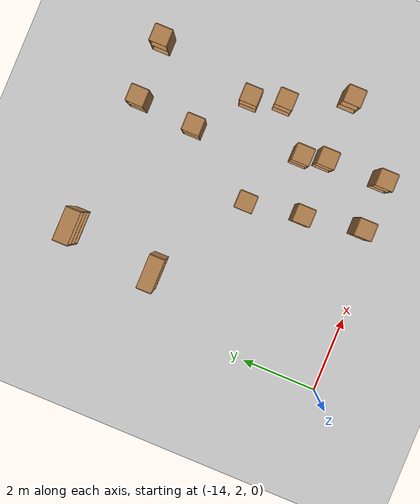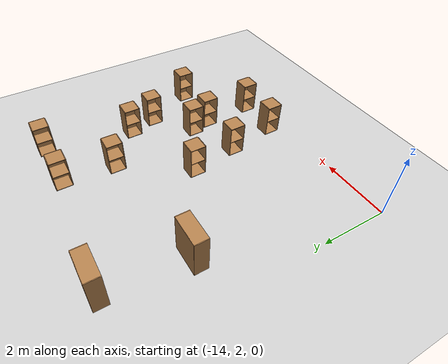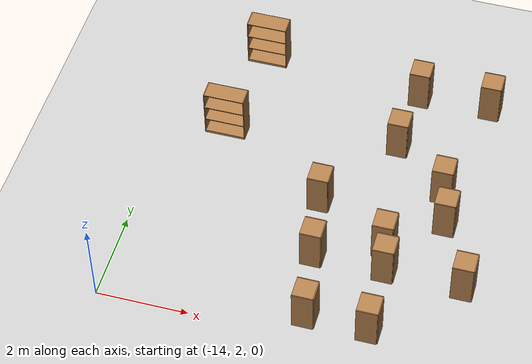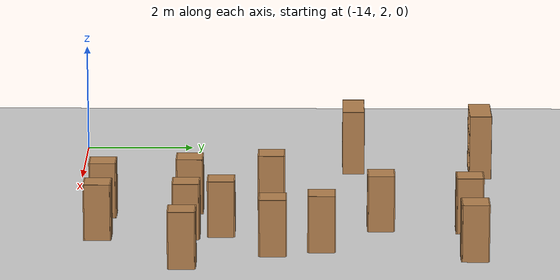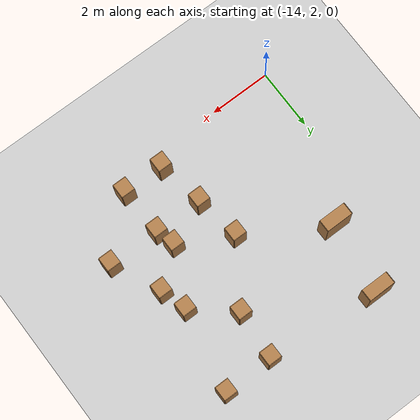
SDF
<sdf version="1.6">
 <world name="default">
  <model name="ground_plane">
   <static>1</static>
   <link name="link">
    <collision name="collision">
     <geometry><plane><normal>0 0 1</normal><size>100 100</size></plane></geometry>
     <surface><friction><ode><mu>100</mu><mu2>50</mu2></ode></friction></surface>
    </collision>
    <visual name="visual">
     <cast_shadows>0</cast_shadows>
     <geometry><plane><normal>0 0 1</normal><size>100 100</size></plane></geometry>
     <material>
      <script><uri>file://media/materials/scripts/gazebo.material</uri><name>Gazebo/Grey</name></script>
     </material>
    </visual>
   </link>
  </model>
  <model name="cabinet_34">
   <static>1</static>
   <link name="cabinet_bottom_plate">
    <inertial>
     <pose>0 0 -1 0 -0 0</pose>
     <inertia><ixx>2.05</ixx><ixy>0</ixy><ixz>0</ixz><iyy>2.05</iyy><iyz>0</iyz><izz>2.05</izz></inertia>
     <mass>25</mass>
    </inertial>
    <collision name="cabinet_bottom_plate_geom">
     <pose>0 0 0.01 0 -0 0</pose>
     <geometry><box><size>0.45 0.45 0.02</size></box></geometry>
    </collision>
    <visual name="cabinet_bottom_plate_geom_visual">
     <pose>0 0 0.01 0 -0 0</pose>
     <geometry><box><size>0.45 0.45 0.02</size></box></geometry>
     <material>
      <script><uri>file://media/materials/scripts/gazebo.material</uri><name>Gazebo/Wood</name></script>
     </material>
    </visual>
    <collision name="cabinet_bottom_plate_geom_cabinet_back_plate">
     <pose>0.235 0 0.51 0 -0 0</pose>
     <geometry><box><size>0.02 0.45 1.02</size></box></geometry>
    </collision>
    <visual name="cabinet_bottom_plate_geom_cabinet_back_plate_visual">
     <pose>0.235 0 0.51 0 -0 0</pose>
     <geometry><box><size>0.02 0.45 1.02</size></box></geometry>
     <material>
      <script><uri>file://media/materials/scripts/gazebo.material</uri><name>Gazebo/Wood</name></script>
     </material>
    </visual>
    <collision name="cabinet_bottom_plate_geom_cabinet_left_plate">
     <pose>0 0.235 0.51 0 -0 0</pose>
     <geometry><box><size>0.45 0.02 1.02</size></box></geometry>
    </collision>
    <visual name="cabinet_bottom_plate_geom_cabinet_left_plate_visual">
     <pose>0 0.235 0.51 0 -0 0</pose>
     <geometry><box><size>0.45 0.02 1.02</size></box></geometry>
     <material>
      <script><uri>file://media/materials/scripts/gazebo.material</uri><name>Gazebo/Wood</name></script>
     </material>
    </visual>
    <collision name="cabinet_bottom_plate_geom_cabinet_middle_plate">
     <pose>0 0 0.51 0 -0 0</pose>
     <geometry><box><size>0.45 0.45 0.02</size></box></geometry>
    </collision>
    <visual name="cabinet_bottom_plate_geom_cabinet_middle_plate_visual">
     <pose>0 0 0.51 0 -0 0</pose>
     <geometry><box><size>0.45 0.45 0.02</size></box></geometry>
     <material>
      <script><uri>file://media/materials/scripts/gazebo.material</uri><name>Gazebo/Wood</name></script>
     </material>
    </visual>
    <collision name="cabinet_bottom_plate_geom_cabinet_right_plate">
     <pose>0 -0.235 0.51 0 -0 0</pose>
     <geometry><box><size>0.45 0.02 1.02</size></box></geometry>
    </collision>
    <visual name="cabinet_bottom_plate_geom_cabinet_right_plate_visual">
     <pose>0 -0.235 0.51 0 -0 0</pose>
     <geometry><box><size>0.45 0.02 1.02</size></box></geometry>
     <material>
      <script><uri>file://media/materials/scripts/gazebo.material</uri><name>Gazebo/Wood</name></script>
     </material>
    </visual>
    <collision name="cabinet_bottom_plate_geom_cabinet_top_plate">
     <pose>0 0 1.01 0 -0 0</pose>
     <geometry><box><size>0.45 0.45 0.02</size></box></geometry>
    </collision>
    <visual name="cabinet_bottom_plate_geom_cabinet_top_plate_visual">
     <pose>0 0 1.01 0 -0 0</pose>
     <geometry><box><size>0.45 0.45 0.02</size></box></geometry>
     <material>
      <script><uri>file://media/materials/scripts/gazebo.material</uri><name>Gazebo/Wood</name></script>
     </material>
    </visual>
   </link>
   <pose>-8.7335 9.07975 0 0 -0 0</pose>
  </model>
  <model name="cabinet_35">
   <static>1</static>
   <link name="cabinet_bottom_plate">
    <inertial>
     <pose>0 0 -1 0 -0 0</pose>
     <inertia><ixx>2.05</ixx><ixy>0</ixy><ixz>0</ixz><iyy>2.05</iyy><iyz>0</iyz><izz>2.05</izz></inertia>
     <mass>25</mass>
    </inertial>
    <collision name="cabinet_bottom_plate_geom">
     <pose>0 0 0.01 0 -0 0</pose>
     <geometry><box><size>0.45 0.45 0.02</size></box></geometry>
    </collision>
    <visual name="cabinet_bottom_plate_geom_visual">
     <pose>0 0 0.01 0 -0 0</pose>
     <geometry><box><size>0.45 0.45 0.02</size></box></geometry>
     <material>
      <script><uri>file://media/materials/scripts/gazebo.material</uri><name>Gazebo/Wood</name></script>
     </material>
    </visual>
    <collision name="cabinet_bottom_plate_geom_cabinet_back_plate">
     <pose>0.235 0 0.51 0 -0 0</pose>
     <geometry><box><size>0.02 0.45 1.02</size></box></geometry>
    </collision>
    <visual name="cabinet_bottom_plate_geom_cabinet_back_plate_visual">
     <pose>0.235 0 0.51 0 -0 0</pose>
     <geometry><box><size>0.02 0.45 1.02</size></box></geometry>
     <material>
      <script><uri>file://media/materials/scripts/gazebo.material</uri><name>Gazebo/Wood</name></script>
     </material>
    </visual>
    <collision name="cabinet_bottom_plate_geom_cabinet_left_plate">
     <pose>0 0.235 0.51 0 -0 0</pose>
     <geometry><box><size>0.45 0.02 1.02</size></box></geometry>
    </collision>
    <visual name="cabinet_bottom_plate_geom_cabinet_left_plate_visual">
     <pose>0 0.235 0.51 0 -0 0</pose>
     <geometry><box><size>0.45 0.02 1.02</size></box></geometry>
     <material>
      <script><uri>file://media/materials/scripts/gazebo.material</uri><name>Gazebo/Wood</name></script>
     </material>
    </visual>
    <collision name="cabinet_bottom_plate_geom_cabinet_middle_plate">
     <pose>0 0 0.51 0 -0 0</pose>
     <geometry><box><size>0.45 0.45 0.02</size></box></geometry>
    </collision>
    <visual name="cabinet_bottom_plate_geom_cabinet_middle_plate_visual">
     <pose>0 0 0.51 0 -0 0</pose>
     <geometry><box><size>0.45 0.45 0.02</size></box></geometry>
     <material>
      <script><uri>file://media/materials/scripts/gazebo.material</uri><name>Gazebo/Wood</name></script>
     </material>
    </visual>
    <collision name="cabinet_bottom_plate_geom_cabinet_right_plate">
     <pose>0 -0.235 0.51 0 -0 0</pose>
     <geometry><box><size>0.45 0.02 1.02</size></box></geometry>
    </collision>
    <visual name="cabinet_bottom_plate_geom_cabinet_right_plate_visual">
     <pose>0 -0.235 0.51 0 -0 0</pose>
     <geometry><box><size>0.45 0.02 1.02</size></box></geometry>
     <material>
      <script><uri>file://media/materials/scripts/gazebo.material</uri><name>Gazebo/Wood</name></script>
     </material>
    </visual>
    <collision name="cabinet_bottom_plate_geom_cabinet_top_plate">
     <pose>0 0 1.01 0 -0 0</pose>
     <geometry><box><size>0.45 0.45 0.02</size></box></geometry>
    </collision>
    <visual name="cabinet_bottom_plate_geom_cabinet_top_plate_visual">
     <pose>0 0 1.01 0 -0 0</pose>
     <geometry><box><size>0.45 0.45 0.02</size></box></geometry>
     <material>
      <script><uri>file://media/materials/scripts/gazebo.material</uri><name>Gazebo/Wood</name></script>
     </material>
    </visual>
   </link>
   <pose>-7.12021 9.10762 0 0 -0 0</pose>
  </model>
  <model name="cabinet_45">
   <static>1</static>
   <link name="cabinet_bottom_plate">
    <inertial>
     <pose>0 0 -1 0 -0 0</pose>
     <inertia><ixx>2.05</ixx><ixy>0</ixy><ixz>0</ixz><iyy>2.05</iyy><iyz>0</iyz><izz>2.05</izz></inertia>
     <mass>25</mass>
    </inertial>
    <collision name="cabinet_bottom_plate_geom">
     <pose>0 0 0.01 0 -0 0</pose>
     <geometry><box><size>0.45 0.45 0.02</size></box></geometry>
    </collision>
    <visual name="cabinet_bottom_plate_geom_visual">
     <pose>0 0 0.01 0 -0 0</pose>
     <geometry><box><size>0.45 0.45 0.02</size></box></geometry>
     <material>
      <script><uri>file://media/materials/scripts/gazebo.material</uri><name>Gazebo/Wood</name></script>
     </material>
    </visual>
    <collision name="cabinet_bottom_plate_geom_cabinet_back_plate">
     <pose>0.235 0 0.51 0 -0 0</pose>
     <geometry><box><size>0.02 0.45 1.02</size></box></geometry>
    </collision>
    <visual name="cabinet_bottom_plate_geom_cabinet_back_plate_visual">
     <pose>0.235 0 0.51 0 -0 0</pose>
     <geometry><box><size>0.02 0.45 1.02</size></box></geometry>
     <material>
      <script><uri>file://media/materials/scripts/gazebo.material</uri><name>Gazebo/Wood</name></script>
     </material>
    </visual>
    <collision name="cabinet_bottom_plate_geom_cabinet_left_plate">
     <pose>0 0.235 0.51 0 -0 0</pose>
     <geometry><box><size>0.45 0.02 1.02</size></box></geometry>
    </collision>
    <visual name="cabinet_bottom_plate_geom_cabinet_left_plate_visual">
     <pose>0 0.235 0.51 0 -0 0</pose>
     <geometry><box><size>0.45 0.02 1.02</size></box></geometry>
     <material>
      <script><uri>file://media/materials/scripts/gazebo.material</uri><name>Gazebo/Wood</name></script>
     </material>
    </visual>
    <collision name="cabinet_bottom_plate_geom_cabinet_middle_plate">
     <pose>0 0 0.51 0 -0 0</pose>
     <geometry><box><size>0.45 0.45 0.02</size></box></geometry>
    </collision>
    <visual name="cabinet_bottom_plate_geom_cabinet_middle_plate_visual">
     <pose>0 0 0.51 0 -0 0</pose>
     <geometry><box><size>0.45 0.45 0.02</size></box></geometry>
     <material>
      <script><uri>file://media/materials/scripts/gazebo.material</uri><name>Gazebo/Wood</name></script>
     </material>
    </visual>
    <collision name="cabinet_bottom_plate_geom_cabinet_right_plate">
     <pose>0 -0.235 0.51 0 -0 0</pose>
     <geometry><box><size>0.45 0.02 1.02</size></box></geometry>
    </collision>
    <visual name="cabinet_bottom_plate_geom_cabinet_right_plate_visual">
     <pose>0 -0.235 0.51 0 -0 0</pose>
     <geometry><box><size>0.45 0.02 1.02</size></box></geometry>
     <material>
      <script><uri>file://media/materials/scripts/gazebo.material</uri><name>Gazebo/Wood</name></script>
     </material>
    </visual>
    <collision name="cabinet_bottom_plate_geom_cabinet_top_plate">
     <pose>0 0 1.01 0 -0 0</pose>
     <geometry><box><size>0.45 0.45 0.02</size></box></geometry>
    </collision>
    <visual name="cabinet_bottom_plate_geom_cabinet_top_plate_visual">
     <pose>0 0 1.01 0 -0 0</pose>
     <geometry><box><size>0.45 0.45 0.02</size></box></geometry>
     <material>
      <script><uri>file://media/materials/scripts/gazebo.material</uri><name>Gazebo/Wood</name></script>
     </material>
    </visual>
   </link>
   <pose>-8.8622 7.51277 0 0 -0 0</pose>
  </model>
  <model name="cabinet_46">
   <static>1</static>
   <link name="cabinet_bottom_plate">
    <inertial>
     <pose>0 0 -1 0 -0 0</pose>
     <inertia><ixx>2.05</ixx><ixy>0</ixy><ixz>0</ixz><iyy>2.05</iyy><iyz>0</iyz><izz>2.05</izz></inertia>
     <mass>25</mass>
    </inertial>
    <collision name="cabinet_bottom_plate_geom">
     <pose>0 0 0.01 0 -0 0</pose>
     <geometry><box><size>0.45 0.45 0.02</size></box></geometry>
    </collision>
    <visual name="cabinet_bottom_plate_geom_visual">
     <pose>0 0 0.01 0 -0 0</pose>
     <geometry><box><size>0.45 0.45 0.02</size></box></geometry>
     <material>
      <script><uri>file://media/materials/scripts/gazebo.material</uri><name>Gazebo/Wood</name></script>
     </material>
    </visual>
    <collision name="cabinet_bottom_plate_geom_cabinet_back_plate">
     <pose>0.235 0 0.51 0 -0 0</pose>
     <geometry><box><size>0.02 0.45 1.02</size></box></geometry>
    </collision>
    <visual name="cabinet_bottom_plate_geom_cabinet_back_plate_visual">
     <pose>0.235 0 0.51 0 -0 0</pose>
     <geometry><box><size>0.02 0.45 1.02</size></box></geometry>
     <material>
      <script><uri>file://media/materials/scripts/gazebo.material</uri><name>Gazebo/Wood</name></script>
     </material>
    </visual>
    <collision name="cabinet_bottom_plate_geom_cabinet_left_plate">
     <pose>0 0.235 0.51 0 -0 0</pose>
     <geometry><box><size>0.45 0.02 1.02</size></box></geometry>
    </collision>
    <visual name="cabinet_bottom_plate_geom_cabinet_left_plate_visual">
     <pose>0 0.235 0.51 0 -0 0</pose>
     <geometry><box><size>0.45 0.02 1.02</size></box></geometry>
     <material>
      <script><uri>file://media/materials/scripts/gazebo.material</uri><name>Gazebo/Wood</name></script>
     </material>
    </visual>
    <collision name="cabinet_bottom_plate_geom_cabinet_middle_plate">
     <pose>0 0 0.51 0 -0 0</pose>
     <geometry><box><size>0.45 0.45 0.02</size></box></geometry>
    </collision>
    <visual name="cabinet_bottom_plate_geom_cabinet_middle_plate_visual">
     <pose>0 0 0.51 0 -0 0</pose>
     <geometry><box><size>0.45 0.45 0.02</size></box></geometry>
     <material>
      <script><uri>file://media/materials/scripts/gazebo.material</uri><name>Gazebo/Wood</name></script>
     </material>
    </visual>
    <collision name="cabinet_bottom_plate_geom_cabinet_right_plate">
     <pose>0 -0.235 0.51 0 -0 0</pose>
     <geometry><box><size>0.45 0.02 1.02</size></box></geometry>
    </collision>
    <visual name="cabinet_bottom_plate_geom_cabinet_right_plate_visual">
     <pose>0 -0.235 0.51 0 -0 0</pose>
     <geometry><box><size>0.45 0.02 1.02</size></box></geometry>
     <material>
      <script><uri>file://media/materials/scripts/gazebo.material</uri><name>Gazebo/Wood</name></script>
     </material>
    </visual>
    <collision name="cabinet_bottom_plate_geom_cabinet_top_plate">
     <pose>0 0 1.01 0 -0 0</pose>
     <geometry><box><size>0.45 0.45 0.02</size></box></geometry>
    </collision>
    <visual name="cabinet_bottom_plate_geom_cabinet_top_plate_visual">
     <pose>0 0 1.01 0 -0 0</pose>
     <geometry><box><size>0.45 0.45 0.02</size></box></geometry>
     <material>
      <script><uri>file://media/materials/scripts/gazebo.material</uri><name>Gazebo/Wood</name></script>
     </material>
    </visual>
   </link>
   <pose>-7.63486 6.45634 0 0 -0 0</pose>
  </model>
  <model name="cabinet_57">
   <static>1</static>
   <link name="cabinet_bottom_plate">
    <inertial>
     <pose>0 0 -1 0 -0 0</pose>
     <inertia><ixx>2.05</ixx><ixy>0</ixy><ixz>0</ixz><iyy>2.05</iyy><iyz>0</iyz><izz>2.05</izz></inertia>
     <mass>25</mass>
    </inertial>
    <collision name="cabinet_bottom_plate_geom">
     <pose>0 0 0.01 0 -0 0</pose>
     <geometry><box><size>0.45 0.45 0.02</size></box></geometry>
    </collision>
    <visual name="cabinet_bottom_plate_geom_visual">
     <pose>0 0 0.01 0 -0 0</pose>
     <geometry><box><size>0.45 0.45 0.02</size></box></geometry>
     <material>
      <script><uri>file://media/materials/scripts/gazebo.material</uri><name>Gazebo/Wood</name></script>
     </material>
    </visual>
    <collision name="cabinet_bottom_plate_geom_cabinet_back_plate">
     <pose>0.235 0 0.51 0 -0 0</pose>
     <geometry><box><size>0.02 0.45 1.02</size></box></geometry>
    </collision>
    <visual name="cabinet_bottom_plate_geom_cabinet_back_plate_visual">
     <pose>0.235 0 0.51 0 -0 0</pose>
     <geometry><box><size>0.02 0.45 1.02</size></box></geometry>
     <material>
      <script><uri>file://media/materials/scripts/gazebo.material</uri><name>Gazebo/Wood</name></script>
     </material>
    </visual>
    <collision name="cabinet_bottom_plate_geom_cabinet_left_plate">
     <pose>0 0.235 0.51 0 -0 0</pose>
     <geometry><box><size>0.45 0.02 1.02</size></box></geometry>
    </collision>
    <visual name="cabinet_bottom_plate_geom_cabinet_left_plate_visual">
     <pose>0 0.235 0.51 0 -0 0</pose>
     <geometry><box><size>0.45 0.02 1.02</size></box></geometry>
     <material>
      <script><uri>file://media/materials/scripts/gazebo.material</uri><name>Gazebo/Wood</name></script>
     </material>
    </visual>
    <collision name="cabinet_bottom_plate_geom_cabinet_middle_plate">
     <pose>0 0 0.51 0 -0 0</pose>
     <geometry><box><size>0.45 0.45 0.02</size></box></geometry>
    </collision>
    <visual name="cabinet_bottom_plate_geom_cabinet_middle_plate_visual">
     <pose>0 0 0.51 0 -0 0</pose>
     <geometry><box><size>0.45 0.45 0.02</size></box></geometry>
     <material>
      <script><uri>file://media/materials/scripts/gazebo.material</uri><name>Gazebo/Wood</name></script>
     </material>
    </visual>
    <collision name="cabinet_bottom_plate_geom_cabinet_right_plate">
     <pose>0 -0.235 0.51 0 -0 0</pose>
     <geometry><box><size>0.45 0.02 1.02</size></box></geometry>
    </collision>
    <visual name="cabinet_bottom_plate_geom_cabinet_right_plate_visual">
     <pose>0 -0.235 0.51 0 -0 0</pose>
     <geometry><box><size>0.45 0.02 1.02</size></box></geometry>
     <material>
      <script><uri>file://media/materials/scripts/gazebo.material</uri><name>Gazebo/Wood</name></script>
     </material>
    </visual>
    <collision name="cabinet_bottom_plate_geom_cabinet_top_plate">
     <pose>0 0 1.01 0 -0 0</pose>
     <geometry><box><size>0.45 0.45 0.02</size></box></geometry>
    </collision>
    <visual name="cabinet_bottom_plate_geom_cabinet_top_plate_visual">
     <pose>0 0 1.01 0 -0 0</pose>
     <geometry><box><size>0.45 0.45 0.02</size></box></geometry>
     <material>
      <script><uri>file://media/materials/scripts/gazebo.material</uri><name>Gazebo/Wood</name></script>
     </material>
    </visual>
   </link>
   <pose>-10.1422 5.55587 0 0 -0 0</pose>
  </model>
  <model name="cabinet_58">
   <static>1</static>
   <link name="cabinet_bottom_plate">
    <inertial>
     <pose>0 0 -1 0 -0 0</pose>
     <inertia><ixx>2.05</ixx><ixy>0</ixy><ixz>0</ixz><iyy>2.05</iyy><iyz>0</iyz><izz>2.05</izz></inertia>
     <mass>25</mass>
    </inertial>
    <collision name="cabinet_bottom_plate_geom">
     <pose>0 0 0.01 0 -0 0</pose>
     <geometry><box><size>0.45 0.45 0.02</size></box></geometry>
    </collision>
    <visual name="cabinet_bottom_plate_geom_visual">
     <pose>0 0 0.01 0 -0 0</pose>
     <geometry><box><size>0.45 0.45 0.02</size></box></geometry>
     <material>
      <script><uri>file://media/materials/scripts/gazebo.material</uri><name>Gazebo/Wood</name></script>
     </material>
    </visual>
    <collision name="cabinet_bottom_plate_geom_cabinet_back_plate">
     <pose>0.235 0 0.51 0 -0 0</pose>
     <geometry><box><size>0.02 0.45 1.02</size></box></geometry>
    </collision>
    <visual name="cabinet_bottom_plate_geom_cabinet_back_plate_visual">
     <pose>0.235 0 0.51 0 -0 0</pose>
     <geometry><box><size>0.02 0.45 1.02</size></box></geometry>
     <material>
      <script><uri>file://media/materials/scripts/gazebo.material</uri><name>Gazebo/Wood</name></script>
     </material>
    </visual>
    <collision name="cabinet_bottom_plate_geom_cabinet_left_plate">
     <pose>0 0.235 0.51 0 -0 0</pose>
     <geometry><box><size>0.45 0.02 1.02</size></box></geometry>
    </collision>
    <visual name="cabinet_bottom_plate_geom_cabinet_left_plate_visual">
     <pose>0 0.235 0.51 0 -0 0</pose>
     <geometry><box><size>0.45 0.02 1.02</size></box></geometry>
     <material>
      <script><uri>file://media/materials/scripts/gazebo.material</uri><name>Gazebo/Wood</name></script>
     </material>
    </visual>
    <collision name="cabinet_bottom_plate_geom_cabinet_middle_plate">
     <pose>0 0 0.51 0 -0 0</pose>
     <geometry><box><size>0.45 0.45 0.02</size></box></geometry>
    </collision>
    <visual name="cabinet_bottom_plate_geom_cabinet_middle_plate_visual">
     <pose>0 0 0.51 0 -0 0</pose>
     <geometry><box><size>0.45 0.45 0.02</size></box></geometry>
     <material>
      <script><uri>file://media/materials/scripts/gazebo.material</uri><name>Gazebo/Wood</name></script>
     </material>
    </visual>
    <collision name="cabinet_bottom_plate_geom_cabinet_right_plate">
     <pose>0 -0.235 0.51 0 -0 0</pose>
     <geometry><box><size>0.45 0.02 1.02</size></box></geometry>
    </collision>
    <visual name="cabinet_bottom_plate_geom_cabinet_right_plate_visual">
     <pose>0 -0.235 0.51 0 -0 0</pose>
     <geometry><box><size>0.45 0.02 1.02</size></box></geometry>
     <material>
      <script><uri>file://media/materials/scripts/gazebo.material</uri><name>Gazebo/Wood</name></script>
     </material>
    </visual>
    <collision name="cabinet_bottom_plate_geom_cabinet_top_plate">
     <pose>0 0 1.01 0 -0 0</pose>
     <geometry><box><size>0.45 0.45 0.02</size></box></geometry>
    </collision>
    <visual name="cabinet_bottom_plate_geom_cabinet_top_plate_visual">
     <pose>0 0 1.01 0 -0 0</pose>
     <geometry><box><size>0.45 0.45 0.02</size></box></geometry>
     <material>
      <script><uri>file://media/materials/scripts/gazebo.material</uri><name>Gazebo/Wood</name></script>
     </material>
    </visual>
   </link>
   <pose>-8.51034 4.68843 0 0 -0 0</pose>
  </model>
  <model name="cabinet_59">
   <static>1</static>
   <link name="cabinet_bottom_plate">
    <inertial>
     <pose>0 0 -1 0 -0 0</pose>
     <inertia><ixx>2.05</ixx><ixy>0</ixy><ixz>0</ixz><iyy>2.05</iyy><iyz>0</iyz><izz>2.05</izz></inertia>
     <mass>25</mass>
    </inertial>
    <collision name="cabinet_bottom_plate_geom">
     <pose>0 0 0.01 0 -0 0</pose>
     <geometry><box><size>0.45 0.45 0.02</size></box></geometry>
    </collision>
    <visual name="cabinet_bottom_plate_geom_visual">
     <pose>0 0 0.01 0 -0 0</pose>
     <geometry><box><size>0.45 0.45 0.02</size></box></geometry>
     <material>
      <script><uri>file://media/materials/scripts/gazebo.material</uri><name>Gazebo/Wood</name></script>
     </material>
    </visual>
    <collision name="cabinet_bottom_plate_geom_cabinet_back_plate">
     <pose>0.235 0 0.51 0 -0 0</pose>
     <geometry><box><size>0.02 0.45 1.02</size></box></geometry>
    </collision>
    <visual name="cabinet_bottom_plate_geom_cabinet_back_plate_visual">
     <pose>0.235 0 0.51 0 -0 0</pose>
     <geometry><box><size>0.02 0.45 1.02</size></box></geometry>
     <material>
      <script><uri>file://media/materials/scripts/gazebo.material</uri><name>Gazebo/Wood</name></script>
     </material>
    </visual>
    <collision name="cabinet_bottom_plate_geom_cabinet_left_plate">
     <pose>0 0.235 0.51 0 -0 0</pose>
     <geometry><box><size>0.45 0.02 1.02</size></box></geometry>
    </collision>
    <visual name="cabinet_bottom_plate_geom_cabinet_left_plate_visual">
     <pose>0 0.235 0.51 0 -0 0</pose>
     <geometry><box><size>0.45 0.02 1.02</size></box></geometry>
     <material>
      <script><uri>file://media/materials/scripts/gazebo.material</uri><name>Gazebo/Wood</name></script>
     </material>
    </visual>
    <collision name="cabinet_bottom_plate_geom_cabinet_middle_plate">
     <pose>0 0 0.51 0 -0 0</pose>
     <geometry><box><size>0.45 0.45 0.02</size></box></geometry>
    </collision>
    <visual name="cabinet_bottom_plate_geom_cabinet_middle_plate_visual">
     <pose>0 0 0.51 0 -0 0</pose>
     <geometry><box><size>0.45 0.45 0.02</size></box></geometry>
     <material>
      <script><uri>file://media/materials/scripts/gazebo.material</uri><name>Gazebo/Wood</name></script>
     </material>
    </visual>
    <collision name="cabinet_bottom_plate_geom_cabinet_right_plate">
     <pose>0 -0.235 0.51 0 -0 0</pose>
     <geometry><box><size>0.45 0.02 1.02</size></box></geometry>
    </collision>
    <visual name="cabinet_bottom_plate_geom_cabinet_right_plate_visual">
     <pose>0 -0.235 0.51 0 -0 0</pose>
     <geometry><box><size>0.45 0.02 1.02</size></box></geometry>
     <material>
      <script><uri>file://media/materials/scripts/gazebo.material</uri><name>Gazebo/Wood</name></script>
     </material>
    </visual>
    <collision name="cabinet_bottom_plate_geom_cabinet_top_plate">
     <pose>0 0 1.01 0 -0 0</pose>
     <geometry><box><size>0.45 0.45 0.02</size></box></geometry>
    </collision>
    <visual name="cabinet_bottom_plate_geom_cabinet_top_plate_visual">
     <pose>0 0 1.01 0 -0 0</pose>
     <geometry><box><size>0.45 0.45 0.02</size></box></geometry>
     <material>
      <script><uri>file://media/materials/scripts/gazebo.material</uri><name>Gazebo/Wood</name></script>
     </material>
    </visual>
   </link>
   <pose>-7.39275 5.60749 0 0 -0 0</pose>
  </model>
  <model name="cabinet_70">
   <static>1</static>
   <link name="cabinet_bottom_plate">
    <inertial>
     <pose>0 0 -1 0 -0 0</pose>
     <inertia><ixx>2.05</ixx><ixy>0</ixy><ixz>0</ixz><iyy>2.05</iyy><iyz>0</iyz><izz>2.05</izz></inertia>
     <mass>25</mass>
    </inertial>
    <collision name="cabinet_bottom_plate_geom">
     <pose>0 0 0.01 0 -0 0</pose>
     <geometry><box><size>0.45 0.45 0.02</size></box></geometry>
    </collision>
    <visual name="cabinet_bottom_plate_geom_visual">
     <pose>0 0 0.01 0 -0 0</pose>
     <geometry><box><size>0.45 0.45 0.02</size></box></geometry>
     <material>
      <script><uri>file://media/materials/scripts/gazebo.material</uri><name>Gazebo/Wood</name></script>
     </material>
    </visual>
    <collision name="cabinet_bottom_plate_geom_cabinet_back_plate">
     <pose>0.235 0 0.51 0 -0 0</pose>
     <geometry><box><size>0.02 0.45 1.02</size></box></geometry>
    </collision>
    <visual name="cabinet_bottom_plate_geom_cabinet_back_plate_visual">
     <pose>0.235 0 0.51 0 -0 0</pose>
     <geometry><box><size>0.02 0.45 1.02</size></box></geometry>
     <material>
      <script><uri>file://media/materials/scripts/gazebo.material</uri><name>Gazebo/Wood</name></script>
     </material>
    </visual>
    <collision name="cabinet_bottom_plate_geom_cabinet_left_plate">
     <pose>0 0.235 0.51 0 -0 0</pose>
     <geometry><box><size>0.45 0.02 1.02</size></box></geometry>
    </collision>
    <visual name="cabinet_bottom_plate_geom_cabinet_left_plate_visual">
     <pose>0 0.235 0.51 0 -0 0</pose>
     <geometry><box><size>0.45 0.02 1.02</size></box></geometry>
     <material>
      <script><uri>file://media/materials/scripts/gazebo.material</uri><name>Gazebo/Wood</name></script>
     </material>
    </visual>
    <collision name="cabinet_bottom_plate_geom_cabinet_middle_plate">
     <pose>0 0 0.51 0 -0 0</pose>
     <geometry><box><size>0.45 0.45 0.02</size></box></geometry>
    </collision>
    <visual name="cabinet_bottom_plate_geom_cabinet_middle_plate_visual">
     <pose>0 0 0.51 0 -0 0</pose>
     <geometry><box><size>0.45 0.45 0.02</size></box></geometry>
     <material>
      <script><uri>file://media/materials/scripts/gazebo.material</uri><name>Gazebo/Wood</name></script>
     </material>
    </visual>
    <collision name="cabinet_bottom_plate_geom_cabinet_right_plate">
     <pose>0 -0.235 0.51 0 -0 0</pose>
     <geometry><box><size>0.45 0.02 1.02</size></box></geometry>
    </collision>
    <visual name="cabinet_bottom_plate_geom_cabinet_right_plate_visual">
     <pose>0 -0.235 0.51 0 -0 0</pose>
     <geometry><box><size>0.45 0.02 1.02</size></box></geometry>
     <material>
      <script><uri>file://media/materials/scripts/gazebo.material</uri><name>Gazebo/Wood</name></script>
     </material>
    </visual>
    <collision name="cabinet_bottom_plate_geom_cabinet_top_plate">
     <pose>0 0 1.01 0 -0 0</pose>
     <geometry><box><size>0.45 0.45 0.02</size></box></geometry>
    </collision>
    <visual name="cabinet_bottom_plate_geom_cabinet_top_plate_visual">
     <pose>0 0 1.01 0 -0 0</pose>
     <geometry><box><size>0.45 0.45 0.02</size></box></geometry>
     <material>
      <script><uri>file://media/materials/scripts/gazebo.material</uri><name>Gazebo/Wood</name></script>
     </material>
    </visual>
   </link>
   <pose>-9.9063 4.0881 0 0 -0 0</pose>
  </model>
  <model name="cabinet_71">
   <static>1</static>
   <link name="cabinet_bottom_plate">
    <inertial>
     <pose>0 0 -1 0 -0 0</pose>
     <inertia><ixx>2.05</ixx><ixy>0</ixy><ixz>0</ixz><iyy>2.05</iyy><iyz>0</iyz><izz>2.05</izz></inertia>
     <mass>25</mass>
    </inertial>
    <collision name="cabinet_bottom_plate_geom">
     <pose>0 0 0.01 0 -0 0</pose>
     <geometry><box><size>0.45 0.45 0.02</size></box></geometry>
    </collision>
    <visual name="cabinet_bottom_plate_geom_visual">
     <pose>0 0 0.01 0 -0 0</pose>
     <geometry><box><size>0.45 0.45 0.02</size></box></geometry>
     <material>
      <script><uri>file://media/materials/scripts/gazebo.material</uri><name>Gazebo/Wood</name></script>
     </material>
    </visual>
    <collision name="cabinet_bottom_plate_geom_cabinet_back_plate">
     <pose>0.235 0 0.51 0 -0 0</pose>
     <geometry><box><size>0.02 0.45 1.02</size></box></geometry>
    </collision>
    <visual name="cabinet_bottom_plate_geom_cabinet_back_plate_visual">
     <pose>0.235 0 0.51 0 -0 0</pose>
     <geometry><box><size>0.02 0.45 1.02</size></box></geometry>
     <material>
      <script><uri>file://media/materials/scripts/gazebo.material</uri><name>Gazebo/Wood</name></script>
     </material>
    </visual>
    <collision name="cabinet_bottom_plate_geom_cabinet_left_plate">
     <pose>0 0.235 0.51 0 -0 0</pose>
     <geometry><box><size>0.45 0.02 1.02</size></box></geometry>
    </collision>
    <visual name="cabinet_bottom_plate_geom_cabinet_left_plate_visual">
     <pose>0 0.235 0.51 0 -0 0</pose>
     <geometry><box><size>0.45 0.02 1.02</size></box></geometry>
     <material>
      <script><uri>file://media/materials/scripts/gazebo.material</uri><name>Gazebo/Wood</name></script>
     </material>
    </visual>
    <collision name="cabinet_bottom_plate_geom_cabinet_middle_plate">
     <pose>0 0 0.51 0 -0 0</pose>
     <geometry><box><size>0.45 0.45 0.02</size></box></geometry>
    </collision>
    <visual name="cabinet_bottom_plate_geom_cabinet_middle_plate_visual">
     <pose>0 0 0.51 0 -0 0</pose>
     <geometry><box><size>0.45 0.45 0.02</size></box></geometry>
     <material>
      <script><uri>file://media/materials/scripts/gazebo.material</uri><name>Gazebo/Wood</name></script>
     </material>
    </visual>
    <collision name="cabinet_bottom_plate_geom_cabinet_right_plate">
     <pose>0 -0.235 0.51 0 -0 0</pose>
     <geometry><box><size>0.45 0.02 1.02</size></box></geometry>
    </collision>
    <visual name="cabinet_bottom_plate_geom_cabinet_right_plate_visual">
     <pose>0 -0.235 0.51 0 -0 0</pose>
     <geometry><box><size>0.45 0.02 1.02</size></box></geometry>
     <material>
      <script><uri>file://media/materials/scripts/gazebo.material</uri><name>Gazebo/Wood</name></script>
     </material>
    </visual>
    <collision name="cabinet_bottom_plate_geom_cabinet_top_plate">
     <pose>0 0 1.01 0 -0 0</pose>
     <geometry><box><size>0.45 0.45 0.02</size></box></geometry>
    </collision>
    <visual name="cabinet_bottom_plate_geom_cabinet_top_plate_visual">
     <pose>0 0 1.01 0 -0 0</pose>
     <geometry><box><size>0.45 0.45 0.02</size></box></geometry>
     <material>
      <script><uri>file://media/materials/scripts/gazebo.material</uri><name>Gazebo/Wood</name></script>
     </material>
    </visual>
   </link>
   <pose>-8.35475 4.07371 0 0 -0 0</pose>
  </model>
  <model name="cabinet_72">
   <static>1</static>
   <link name="cabinet_bottom_plate">
    <inertial>
     <pose>0 0 -1 0 -0 0</pose>
     <inertia><ixx>2.05</ixx><ixy>0</ixy><ixz>0</ixz><iyy>2.05</iyy><iyz>0</iyz><izz>2.05</izz></inertia>
     <mass>25</mass>
    </inertial>
    <collision name="cabinet_bottom_plate_geom">
     <pose>0 0 0.01 0 -0 0</pose>
     <geometry><box><size>0.45 0.45 0.02</size></box></geometry>
    </collision>
    <visual name="cabinet_bottom_plate_geom_visual">
     <pose>0 0 0.01 0 -0 0</pose>
     <geometry><box><size>0.45 0.45 0.02</size></box></geometry>
     <material>
      <script><uri>file://media/materials/scripts/gazebo.material</uri><name>Gazebo/Wood</name></script>
     </material>
    </visual>
    <collision name="cabinet_bottom_plate_geom_cabinet_back_plate">
     <pose>0.235 0 0.51 0 -0 0</pose>
     <geometry><box><size>0.02 0.45 1.02</size></box></geometry>
    </collision>
    <visual name="cabinet_bottom_plate_geom_cabinet_back_plate_visual">
     <pose>0.235 0 0.51 0 -0 0</pose>
     <geometry><box><size>0.02 0.45 1.02</size></box></geometry>
     <material>
      <script><uri>file://media/materials/scripts/gazebo.material</uri><name>Gazebo/Wood</name></script>
     </material>
    </visual>
    <collision name="cabinet_bottom_plate_geom_cabinet_left_plate">
     <pose>0 0.235 0.51 0 -0 0</pose>
     <geometry><box><size>0.45 0.02 1.02</size></box></geometry>
    </collision>
    <visual name="cabinet_bottom_plate_geom_cabinet_left_plate_visual">
     <pose>0 0.235 0.51 0 -0 0</pose>
     <geometry><box><size>0.45 0.02 1.02</size></box></geometry>
     <material>
      <script><uri>file://media/materials/scripts/gazebo.material</uri><name>Gazebo/Wood</name></script>
     </material>
    </visual>
    <collision name="cabinet_bottom_plate_geom_cabinet_middle_plate">
     <pose>0 0 0.51 0 -0 0</pose>
     <geometry><box><size>0.45 0.45 0.02</size></box></geometry>
    </collision>
    <visual name="cabinet_bottom_plate_geom_cabinet_middle_plate_visual">
     <pose>0 0 0.51 0 -0 0</pose>
     <geometry><box><size>0.45 0.45 0.02</size></box></geometry>
     <material>
      <script><uri>file://media/materials/scripts/gazebo.material</uri><name>Gazebo/Wood</name></script>
     </material>
    </visual>
    <collision name="cabinet_bottom_plate_geom_cabinet_right_plate">
     <pose>0 -0.235 0.51 0 -0 0</pose>
     <geometry><box><size>0.45 0.02 1.02</size></box></geometry>
    </collision>
    <visual name="cabinet_bottom_plate_geom_cabinet_right_plate_visual">
     <pose>0 -0.235 0.51 0 -0 0</pose>
     <geometry><box><size>0.45 0.02 1.02</size></box></geometry>
     <material>
      <script><uri>file://media/materials/scripts/gazebo.material</uri><name>Gazebo/Wood</name></script>
     </material>
    </visual>
    <collision name="cabinet_bottom_plate_geom_cabinet_top_plate">
     <pose>0 0 1.01 0 -0 0</pose>
     <geometry><box><size>0.45 0.45 0.02</size></box></geometry>
    </collision>
    <visual name="cabinet_bottom_plate_geom_cabinet_top_plate_visual">
     <pose>0 0 1.01 0 -0 0</pose>
     <geometry><box><size>0.45 0.45 0.02</size></box></geometry>
     <material>
      <script><uri>file://media/materials/scripts/gazebo.material</uri><name>Gazebo/Wood</name></script>
     </material>
    </visual>
   </link>
   <pose>-6.67317 4.05624 0 0 -0 0</pose>
  </model>
  <model name="cabinet_83">
   <static>1</static>
   <link name="cabinet_bottom_plate">
    <inertial>
     <pose>0 0 -1 0 -0 0</pose>
     <inertia><ixx>2.05</ixx><ixy>0</ixy><ixz>0</ixz><iyy>2.05</iyy><iyz>0</iyz><izz>2.05</izz></inertia>
     <mass>25</mass>
    </inertial>
    <collision name="cabinet_bottom_plate_geom">
     <pose>0 0 0.01 0 -0 0</pose>
     <geometry><box><size>0.45 0.45 0.02</size></box></geometry>
    </collision>
    <visual name="cabinet_bottom_plate_geom_visual">
     <pose>0 0 0.01 0 -0 0</pose>
     <geometry><box><size>0.45 0.45 0.02</size></box></geometry>
     <material>
      <script><uri>file://media/materials/scripts/gazebo.material</uri><name>Gazebo/Wood</name></script>
     </material>
    </visual>
    <collision name="cabinet_bottom_plate_geom_cabinet_back_plate">
     <pose>0.235 0 0.51 0 -0 0</pose>
     <geometry><box><size>0.02 0.45 1.02</size></box></geometry>
    </collision>
    <visual name="cabinet_bottom_plate_geom_cabinet_back_plate_visual">
     <pose>0.235 0 0.51 0 -0 0</pose>
     <geometry><box><size>0.02 0.45 1.02</size></box></geometry>
     <material>
      <script><uri>file://media/materials/scripts/gazebo.material</uri><name>Gazebo/Wood</name></script>
     </material>
    </visual>
    <collision name="cabinet_bottom_plate_geom_cabinet_left_plate">
     <pose>0 0.235 0.51 0 -0 0</pose>
     <geometry><box><size>0.45 0.02 1.02</size></box></geometry>
    </collision>
    <visual name="cabinet_bottom_plate_geom_cabinet_left_plate_visual">
     <pose>0 0.235 0.51 0 -0 0</pose>
     <geometry><box><size>0.45 0.02 1.02</size></box></geometry>
     <material>
      <script><uri>file://media/materials/scripts/gazebo.material</uri><name>Gazebo/Wood</name></script>
     </material>
    </visual>
    <collision name="cabinet_bottom_plate_geom_cabinet_middle_plate">
     <pose>0 0 0.51 0 -0 0</pose>
     <geometry><box><size>0.45 0.45 0.02</size></box></geometry>
    </collision>
    <visual name="cabinet_bottom_plate_geom_cabinet_middle_plate_visual">
     <pose>0 0 0.51 0 -0 0</pose>
     <geometry><box><size>0.45 0.45 0.02</size></box></geometry>
     <material>
      <script><uri>file://media/materials/scripts/gazebo.material</uri><name>Gazebo/Wood</name></script>
     </material>
    </visual>
    <collision name="cabinet_bottom_plate_geom_cabinet_right_plate">
     <pose>0 -0.235 0.51 0 -0 0</pose>
     <geometry><box><size>0.45 0.02 1.02</size></box></geometry>
    </collision>
    <visual name="cabinet_bottom_plate_geom_cabinet_right_plate_visual">
     <pose>0 -0.235 0.51 0 -0 0</pose>
     <geometry><box><size>0.45 0.02 1.02</size></box></geometry>
     <material>
      <script><uri>file://media/materials/scripts/gazebo.material</uri><name>Gazebo/Wood</name></script>
     </material>
    </visual>
    <collision name="cabinet_bottom_plate_geom_cabinet_top_plate">
     <pose>0 0 1.01 0 -0 0</pose>
     <geometry><box><size>0.45 0.45 0.02</size></box></geometry>
    </collision>
    <visual name="cabinet_bottom_plate_geom_cabinet_top_plate_visual">
     <pose>0 0 1.01 0 -0 0</pose>
     <geometry><box><size>0.45 0.45 0.02</size></box></geometry>
     <material>
      <script><uri>file://media/materials/scripts/gazebo.material</uri><name>Gazebo/Wood</name></script>
     </material>
    </visual>
   </link>
   <pose>-9.64462 2.53642 0 0 -0 0</pose>
  </model>
  <model name="cabinet_84">
   <static>1</static>
   <link name="cabinet_bottom_plate">
    <inertial>
     <pose>0 0 -1 0 -0 0</pose>
     <inertia><ixx>2.05</ixx><ixy>0</ixy><ixz>0</ixz><iyy>2.05</iyy><iyz>0</iyz><izz>2.05</izz></inertia>
     <mass>25</mass>
    </inertial>
    <collision name="cabinet_bottom_plate_geom">
     <pose>0 0 0.01 0 -0 0</pose>
     <geometry><box><size>0.45 0.45 0.02</size></box></geometry>
    </collision>
    <visual name="cabinet_bottom_plate_geom_visual">
     <pose>0 0 0.01 0 -0 0</pose>
     <geometry><box><size>0.45 0.45 0.02</size></box></geometry>
     <material>
      <script><uri>file://media/materials/scripts/gazebo.material</uri><name>Gazebo/Wood</name></script>
     </material>
    </visual>
    <collision name="cabinet_bottom_plate_geom_cabinet_back_plate">
     <pose>0.235 0 0.51 0 -0 0</pose>
     <geometry><box><size>0.02 0.45 1.02</size></box></geometry>
    </collision>
    <visual name="cabinet_bottom_plate_geom_cabinet_back_plate_visual">
     <pose>0.235 0 0.51 0 -0 0</pose>
     <geometry><box><size>0.02 0.45 1.02</size></box></geometry>
     <material>
      <script><uri>file://media/materials/scripts/gazebo.material</uri><name>Gazebo/Wood</name></script>
     </material>
    </visual>
    <collision name="cabinet_bottom_plate_geom_cabinet_left_plate">
     <pose>0 0.235 0.51 0 -0 0</pose>
     <geometry><box><size>0.45 0.02 1.02</size></box></geometry>
    </collision>
    <visual name="cabinet_bottom_plate_geom_cabinet_left_plate_visual">
     <pose>0 0.235 0.51 0 -0 0</pose>
     <geometry><box><size>0.45 0.02 1.02</size></box></geometry>
     <material>
      <script><uri>file://media/materials/scripts/gazebo.material</uri><name>Gazebo/Wood</name></script>
     </material>
    </visual>
    <collision name="cabinet_bottom_plate_geom_cabinet_middle_plate">
     <pose>0 0 0.51 0 -0 0</pose>
     <geometry><box><size>0.45 0.45 0.02</size></box></geometry>
    </collision>
    <visual name="cabinet_bottom_plate_geom_cabinet_middle_plate_visual">
     <pose>0 0 0.51 0 -0 0</pose>
     <geometry><box><size>0.45 0.45 0.02</size></box></geometry>
     <material>
      <script><uri>file://media/materials/scripts/gazebo.material</uri><name>Gazebo/Wood</name></script>
     </material>
    </visual>
    <collision name="cabinet_bottom_plate_geom_cabinet_right_plate">
     <pose>0 -0.235 0.51 0 -0 0</pose>
     <geometry><box><size>0.45 0.02 1.02</size></box></geometry>
    </collision>
    <visual name="cabinet_bottom_plate_geom_cabinet_right_plate_visual">
     <pose>0 -0.235 0.51 0 -0 0</pose>
     <geometry><box><size>0.45 0.02 1.02</size></box></geometry>
     <material>
      <script><uri>file://media/materials/scripts/gazebo.material</uri><name>Gazebo/Wood</name></script>
     </material>
    </visual>
    <collision name="cabinet_bottom_plate_geom_cabinet_top_plate">
     <pose>0 0 1.01 0 -0 0</pose>
     <geometry><box><size>0.45 0.45 0.02</size></box></geometry>
    </collision>
    <visual name="cabinet_bottom_plate_geom_cabinet_top_plate_visual">
     <pose>0 0 1.01 0 -0 0</pose>
     <geometry><box><size>0.45 0.45 0.02</size></box></geometry>
     <material>
      <script><uri>file://media/materials/scripts/gazebo.material</uri><name>Gazebo/Wood</name></script>
     </material>
    </visual>
   </link>
   <pose>-8.30141 2.5178 0 0 -0 0</pose>
  </model>
  <model name="bookshelf_6">
   <static>1</static>
   <link name="link">
    <inertial><mass>1</mass></inertial>
    <collision name="back">
     <pose>0 0.005 0.6 0 -0 0</pose>
     <geometry><box><size>0.9 0.01 1.2</size></box></geometry>
    </collision>
    <visual name="visual1">
     <pose>0 0.005 0.6 0 -0 0</pose>
     <geometry><box><size>0.9 0.01 1.2</size></box></geometry>
     <material>
      <script><uri>file://media/materials/scripts/gazebo.material</uri><name>Gazebo/Wood</name></script>
     </material>
    </visual>
    <collision name="left_side">
     <pose>0.45 -0.195 0.6 0 -0 0</pose>
     <geometry><box><size>0.02 0.4 1.2</size></box></geometry>
    </collision>
    <visual name="visual2">
     <pose>0.45 -0.195 0.6 0 -0 0</pose>
     <geometry><box><size>0.02 0.4 1.2</size></box></geometry>
     <material>
      <script><uri>file://media/materials/scripts/gazebo.material</uri><name>Gazebo/Wood</name></script>
     </material>
    </visual>
    <collision name="right_side">
     <pose>-0.45 -0.195 0.6 0 -0 0</pose>
     <geometry><box><size>0.02 0.4 1.2</size></box></geometry>
    </collision>
    <visual name="visual3">
     <pose>-0.45 -0.195 0.6 0 -0 0</pose>
     <geometry><box><size>0.02 0.4 1.2</size></box></geometry>
     <material>
      <script><uri>file://media/materials/scripts/gazebo.material</uri><name>Gazebo/Wood</name></script>
     </material>
    </visual>
    <collision name="bottom">
     <pose>0 -0.195 0.03 0 -0 0</pose>
     <geometry><box><size>0.88 0.4 0.06</size></box></geometry>
    </collision>
    <visual name="visual4">
     <pose>0 -0.195 0.03 0 -0 0</pose>
     <geometry><box><size>0.88 0.4 0.06</size></box></geometry>
     <material>
      <script><uri>file://media/materials/scripts/gazebo.material</uri><name>Gazebo/Wood</name></script>
     </material>
    </visual>
    <collision name="top">
     <pose>0 -0.195 1.19 0 -0 0</pose>
     <geometry><box><size>0.88 0.4 0.02</size></box></geometry>
    </collision>
    <visual name="visual5">
     <pose>0 -0.195 1.19 0 -0 0</pose>
     <geometry><box><size>0.88 0.4 0.02</size></box></geometry>
     <material>
      <script><uri>file://media/materials/scripts/gazebo.material</uri><name>Gazebo/Wood</name></script>
     </material>
    </visual>
    <collision name="low_shelf">
     <pose>0 -0.195 0.43 0 -0 0</pose>
     <geometry><box><size>0.88 0.4 0.02</size></box></geometry>
    </collision>
    <visual name="visual6">
     <pose>0 -0.195 0.43 0 -0 0</pose>
     <geometry><box><size>0.88 0.4 0.02</size></box></geometry>
     <material>
      <script><uri>file://media/materials/scripts/gazebo.material</uri><name>Gazebo/Wood</name></script>
     </material>
    </visual>
    <collision name="high_shelf">
     <pose>0 -0.195 0.8 0 -0 0</pose>
     <geometry><box><size>0.88 0.4 0.02</size></box></geometry>
    </collision>
    <visual name="visual7">
     <pose>0 -0.195 0.8 0 -0 0</pose>
     <geometry><box><size>0.88 0.4 0.02</size></box></geometry>
     <material>
      <script><uri>file://media/materials/scripts/gazebo.material</uri><name>Gazebo/Wood</name></script>
     </material>
    </visual>
   </link>
   <pose>-12.39 9.61249 0 0 -0 0</pose>
  </model>
  <model name="bookshelf_7">
   <static>1</static>
   <link name="link">
    <inertial><mass>1</mass></inertial>
    <collision name="back">
     <pose>0 0.005 0.6 0 -0 0</pose>
     <geometry><box><size>0.9 0.01 1.2</size></box></geometry>
    </collision>
    <visual name="visual1">
     <pose>0 0.005 0.6 0 -0 0</pose>
     <geometry><box><size>0.9 0.01 1.2</size></box></geometry>
     <material>
      <script><uri>file://media/materials/scripts/gazebo.material</uri><name>Gazebo/Wood</name></script>
     </material>
    </visual>
    <collision name="left_side">
     <pose>0.45 -0.195 0.6 0 -0 0</pose>
     <geometry><box><size>0.02 0.4 1.2</size></box></geometry>
    </collision>
    <visual name="visual2">
     <pose>0.45 -0.195 0.6 0 -0 0</pose>
     <geometry><box><size>0.02 0.4 1.2</size></box></geometry>
     <material>
      <script><uri>file://media/materials/scripts/gazebo.material</uri><name>Gazebo/Wood</name></script>
     </material>
    </visual>
    <collision name="right_side">
     <pose>-0.45 -0.195 0.6 0 -0 0</pose>
     <geometry><box><size>0.02 0.4 1.2</size></box></geometry>
    </collision>
    <visual name="visual3">
     <pose>-0.45 -0.195 0.6 0 -0 0</pose>
     <geometry><box><size>0.02 0.4 1.2</size></box></geometry>
     <material>
      <script><uri>file://media/materials/scripts/gazebo.material</uri><name>Gazebo/Wood</name></script>
     </material>
    </visual>
    <collision name="bottom">
     <pose>0 -0.195 0.03 0 -0 0</pose>
     <geometry><box><size>0.88 0.4 0.06</size></box></geometry>
    </collision>
    <visual name="visual4">
     <pose>0 -0.195 0.03 0 -0 0</pose>
     <geometry><box><size>0.88 0.4 0.06</size></box></geometry>
     <material>
      <script><uri>file://media/materials/scripts/gazebo.material</uri><name>Gazebo/Wood</name></script>
     </material>
    </visual>
    <collision name="top">
     <pose>0 -0.195 1.19 0 -0 0</pose>
     <geometry><box><size>0.88 0.4 0.02</size></box></geometry>
    </collision>
    <visual name="visual5">
     <pose>0 -0.195 1.19 0 -0 0</pose>
     <geometry><box><size>0.88 0.4 0.02</size></box></geometry>
     <material>
      <script><uri>file://media/materials/scripts/gazebo.material</uri><name>Gazebo/Wood</name></script>
     </material>
    </visual>
    <collision name="low_shelf">
     <pose>0 -0.195 0.43 0 -0 0</pose>
     <geometry><box><size>0.88 0.4 0.02</size></box></geometry>
    </collision>
    <visual name="visual6">
     <pose>0 -0.195 0.43 0 -0 0</pose>
     <geometry><box><size>0.88 0.4 0.02</size></box></geometry>
     <material>
      <script><uri>file://media/materials/scripts/gazebo.material</uri><name>Gazebo/Wood</name></script>
     </material>
    </visual>
    <collision name="high_shelf">
     <pose>0 -0.195 0.8 0 -0 0</pose>
     <geometry><box><size>0.88 0.4 0.02</size></box></geometry>
    </collision>
    <visual name="visual7">
     <pose>0 -0.195 0.8 0 -0 0</pose>
     <geometry><box><size>0.88 0.4 0.02</size></box></geometry>
     <material>
      <script><uri>file://media/materials/scripts/gazebo.material</uri><name>Gazebo/Wood</name></script>
     </material>
    </visual>
   </link>
   <pose>-12.6903 7.25469 0 0 -0 0</pose>
  </model>
 </world>
</sdf>
